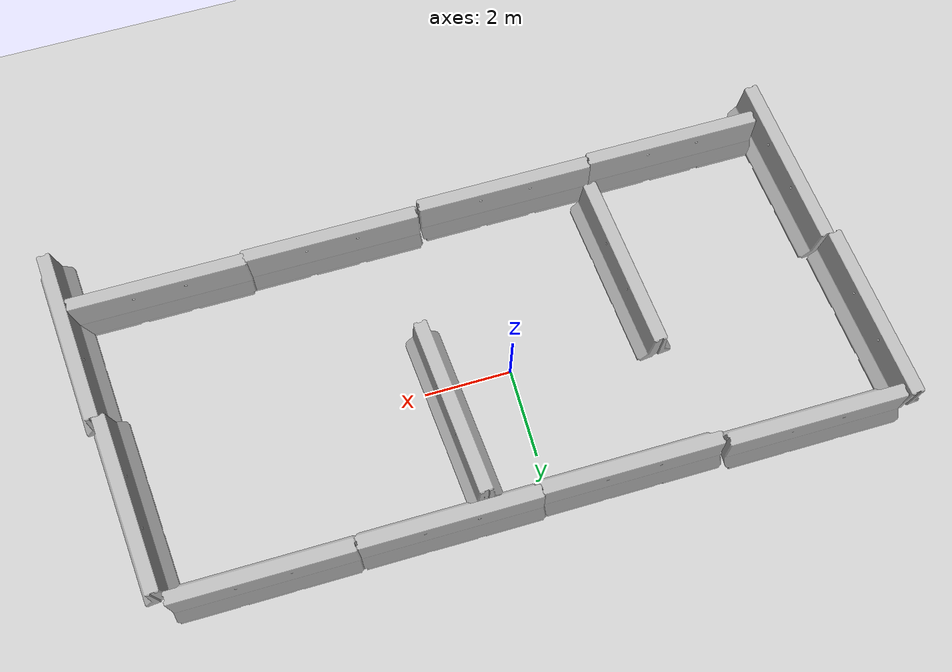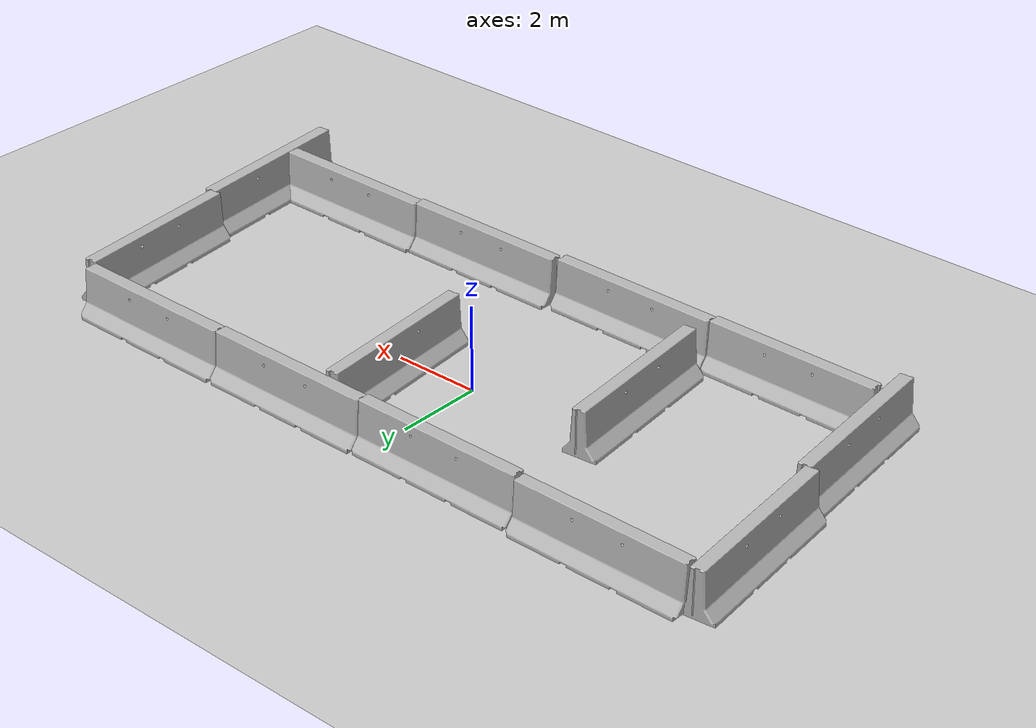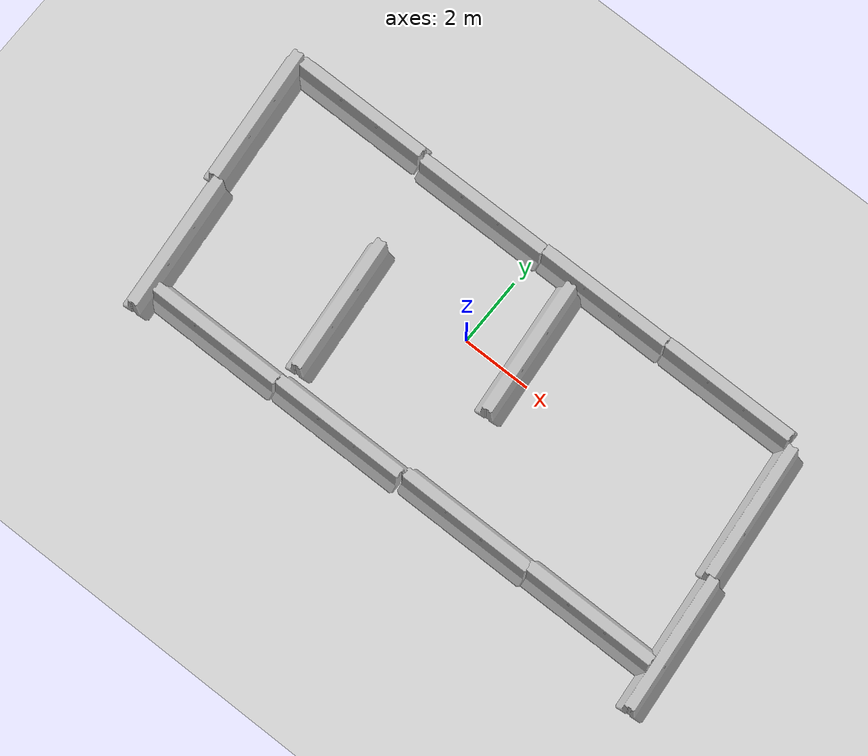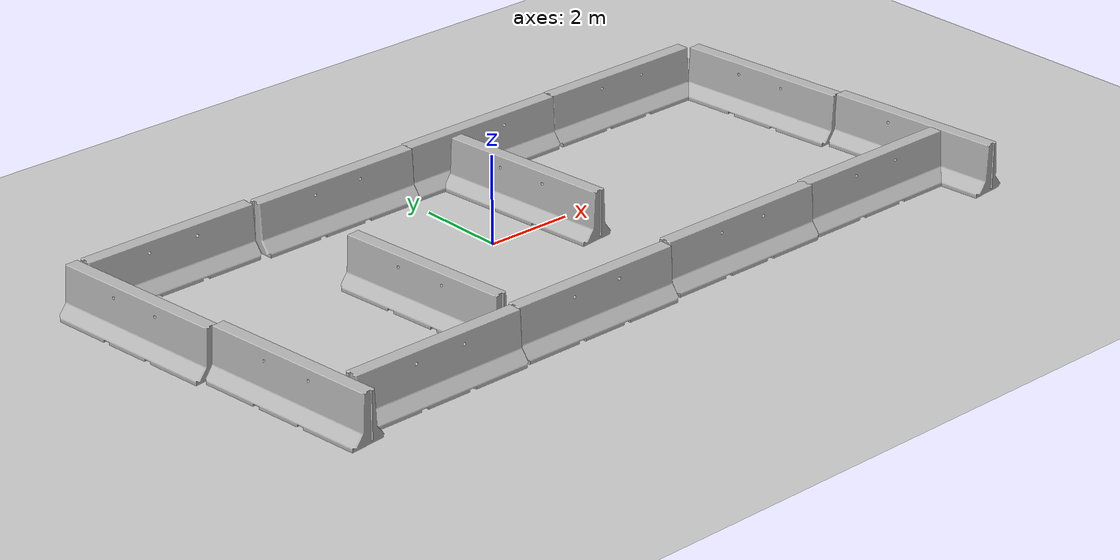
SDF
<sdf version="1.6">
 <world name="default">
  <light name="sun" type="directional">
   <pose>0 0 10 0 -0 0</pose>
   <diffuse>0.8 0.8 0.8 1</diffuse>
   <specular>0.2 0.2 0.2 1</specular>
   <attenuation>
    <range>1000</range>
    <constant>0.9</constant>
    <linear>0.01</linear>
    <quadratic>0.001</quadratic>
   </attenuation>
   <direction>-0.5 0.1 -0.9</direction>
  </light>
  <model name="ground_plane">
   <static>1</static>
   <link name="link">
    <collision name="collision">
     <geometry><plane><normal>0 0 1</normal><size>100 100</size></plane></geometry>
     <surface>
      <contact><collide_bitmask>65535</collide_bitmask></contact>
      <friction><ode><mu>100</mu><mu2>50</mu2></ode></friction>
     </surface>
    </collision>
    <visual name="visual">
     <cast_shadows>0</cast_shadows>
     <geometry><plane><normal>0 0 1</normal><size>100 100</size></plane></geometry>
     <material>
      <script><uri>file://media/materials/scripts/gazebo.material</uri><name>Gazebo/Grey</name></script>
     </material>
    </visual>
   </link>
  </model>
  <gravity>0 0 -9.8</gravity>
  <magnetic_field>6e-06 2.3e-05 -4.2e-05</magnetic_field>
  <atmosphere type="adiabatic"/>
  <physics name="default_physics" default="0" type="ode">
   <max_step_size>0.001</max_step_size>
   <real_time_factor>1</real_time_factor>
   <real_time_update_rate>1000</real_time_update_rate>
  </physics>
  <scene><ambient>0.4 0.4 0.4 1</ambient><background>0.7 0.7 0.7 1</background><shadows>1</shadows></scene>
  <audio><device>default</device></audio>
  <spherical_coordinates>
   <surface_model>EARTH_WGS84</surface_model>
   <latitude_deg>0</latitude_deg>
   <longitude_deg>0</longitude_deg>
   <elevation>0</elevation>
   <heading_deg>0</heading_deg>
  </spherical_coordinates>
  <model name="jersey_barrier">
   <static>1</static>
   <link name="link">
    <visual name="visual">
     <geometry><mesh><uri>model://jersey_barrier/meshes/jersey_barrier.dae</uri></mesh></geometry>
    </visual>
    <collision name="upright">
     <pose>0 0 0.5715 0 -0 0</pose>
     <geometry><box><size>4.06542 0.3063 1.143</size></box></geometry>
    </collision>
    <collision name="base">
     <pose>0 0 0.032258 0 -0 0</pose>
     <geometry><box><size>4.06542 0.8107 0.064516</size></box></geometry>
    </collision>
    <collision name="base2">
     <pose>0 0 0.1 0 -0 0</pose>
     <geometry><box><size>4.06542 0.65 0.1</size></box></geometry>
    </collision>
    <collision name="base3">
     <pose>0 0 0.2 0 -0 0</pose>
     <geometry><box><size>4.06542 0.5 0.1</size></box></geometry>
    </collision>
    <collision name="left-angle">
     <pose>0 -0.224 0.2401 0.9 -0 0</pose>
     <geometry><box><size>4.06542 0.5 0.064516</size></box></geometry>
    </collision>
    <collision name="right-angle">
     <pose>0 0.224 0.2401 -0.9 0 0</pose>
     <geometry><box><size>4.06542 0.5 0.064516</size></box></geometry>
    </collision>
   </link>
   <pose>3.11902 -3.90416 0 0 -0 0</pose>
  </model>
  <model name="jersey_barrier_0">
   <static>1</static>
   <link name="link">
    <visual name="visual">
     <geometry><mesh><uri>model://jersey_barrier/meshes/jersey_barrier.dae</uri></mesh></geometry>
    </visual>
    <collision name="upright">
     <pose>0 0 0.5715 0 -0 0</pose>
     <geometry><box><size>4.06542 0.3063 1.143</size></box></geometry>
    </collision>
    <collision name="base">
     <pose>0 0 0.032258 0 -0 0</pose>
     <geometry><box><size>4.06542 0.8107 0.064516</size></box></geometry>
    </collision>
    <collision name="base2">
     <pose>0 0 0.1 0 -0 0</pose>
     <geometry><box><size>4.06542 0.65 0.1</size></box></geometry>
    </collision>
    <collision name="base3">
     <pose>0 0 0.2 0 -0 0</pose>
     <geometry><box><size>4.06542 0.5 0.1</size></box></geometry>
    </collision>
    <collision name="left-angle">
     <pose>0 -0.224 0.2401 0.9 -0 0</pose>
     <geometry><box><size>4.06542 0.5 0.064516</size></box></geometry>
    </collision>
    <collision name="right-angle">
     <pose>0 0.224 0.2401 -0.9 0 0</pose>
     <geometry><box><size>4.06542 0.5 0.064516</size></box></geometry>
    </collision>
   </link>
   <pose>-0.995885 -4.02852 0 0 -0 0</pose>
  </model>
  <model name="jersey_barrier_1">
   <static>1</static>
   <link name="link">
    <visual name="visual">
     <geometry><mesh><uri>model://jersey_barrier/meshes/jersey_barrier.dae</uri></mesh></geometry>
    </visual>
    <collision name="upright">
     <pose>0 0 0.5715 0 -0 0</pose>
     <geometry><box><size>4.06542 0.3063 1.143</size></box></geometry>
    </collision>
    <collision name="base">
     <pose>0 0 0.032258 0 -0 0</pose>
     <geometry><box><size>4.06542 0.8107 0.064516</size></box></geometry>
    </collision>
    <collision name="base2">
     <pose>0 0 0.1 0 -0 0</pose>
     <geometry><box><size>4.06542 0.65 0.1</size></box></geometry>
    </collision>
    <collision name="base3">
     <pose>0 0 0.2 0 -0 0</pose>
     <geometry><box><size>4.06542 0.5 0.1</size></box></geometry>
    </collision>
    <collision name="left-angle">
     <pose>0 -0.224 0.2401 0.9 -0 0</pose>
     <geometry><box><size>4.06542 0.5 0.064516</size></box></geometry>
    </collision>
    <collision name="right-angle">
     <pose>0 0.224 0.2401 -0.9 0 0</pose>
     <geometry><box><size>4.06542 0.5 0.064516</size></box></geometry>
    </collision>
   </link>
   <pose>-5.05032 -4.09335 0 0 -0 0</pose>
  </model>
  <model name="jersey_barrier_2">
   <static>1</static>
   <link name="link">
    <visual name="visual">
     <geometry><mesh><uri>model://jersey_barrier/meshes/jersey_barrier.dae</uri></mesh></geometry>
    </visual>
    <collision name="upright">
     <pose>0 0 0.5715 0 -0 0</pose>
     <geometry><box><size>4.06542 0.3063 1.143</size></box></geometry>
    </collision>
    <collision name="base">
     <pose>0 0 0.032258 0 -0 0</pose>
     <geometry><box><size>4.06542 0.8107 0.064516</size></box></geometry>
    </collision>
    <collision name="base2">
     <pose>0 0 0.1 0 -0 0</pose>
     <geometry><box><size>4.06542 0.65 0.1</size></box></geometry>
    </collision>
    <collision name="base3">
     <pose>0 0 0.2 0 -0 0</pose>
     <geometry><box><size>4.06542 0.5 0.1</size></box></geometry>
    </collision>
    <collision name="left-angle">
     <pose>0 -0.224 0.2401 0.9 -0 0</pose>
     <geometry><box><size>4.06542 0.5 0.064516</size></box></geometry>
    </collision>
    <collision name="right-angle">
     <pose>0 0.224 0.2401 -0.9 0 0</pose>
     <geometry><box><size>4.06542 0.5 0.064516</size></box></geometry>
    </collision>
   </link>
   <pose>2.22801 2.99706 0 0 -0 0</pose>
  </model>
  <model name="jersey_barrier_3">
   <static>1</static>
   <link name="link">
    <visual name="visual">
     <geometry><mesh><uri>model://jersey_barrier/meshes/jersey_barrier.dae</uri></mesh></geometry>
    </visual>
    <collision name="upright">
     <pose>0 0 0.5715 0 -0 0</pose>
     <geometry><box><size>4.06542 0.3063 1.143</size></box></geometry>
    </collision>
    <collision name="base">
     <pose>0 0 0.032258 0 -0 0</pose>
     <geometry><box><size>4.06542 0.8107 0.064516</size></box></geometry>
    </collision>
    <collision name="base2">
     <pose>0 0 0.1 0 -0 0</pose>
     <geometry><box><size>4.06542 0.65 0.1</size></box></geometry>
    </collision>
    <collision name="base3">
     <pose>0 0 0.2 0 -0 0</pose>
     <geometry><box><size>4.06542 0.5 0.1</size></box></geometry>
    </collision>
    <collision name="left-angle">
     <pose>0 -0.224 0.2401 0.9 -0 0</pose>
     <geometry><box><size>4.06542 0.5 0.064516</size></box></geometry>
    </collision>
    <collision name="right-angle">
     <pose>0 0.224 0.2401 -0.9 0 0</pose>
     <geometry><box><size>4.06542 0.5 0.064516</size></box></geometry>
    </collision>
   </link>
   <pose>-1.79729 2.94808 0 0 -0 0</pose>
  </model>
  <model name="jersey_barrier_4">
   <static>1</static>
   <link name="link">
    <visual name="visual">
     <geometry><mesh><uri>model://jersey_barrier/meshes/jersey_barrier.dae</uri></mesh></geometry>
    </visual>
    <collision name="upright">
     <pose>0 0 0.5715 0 -0 0</pose>
     <geometry><box><size>4.06542 0.3063 1.143</size></box></geometry>
    </collision>
    <collision name="base">
     <pose>0 0 0.032258 0 -0 0</pose>
     <geometry><box><size>4.06542 0.8107 0.064516</size></box></geometry>
    </collision>
    <collision name="base2">
     <pose>0 0 0.1 0 -0 0</pose>
     <geometry><box><size>4.06542 0.65 0.1</size></box></geometry>
    </collision>
    <collision name="base3">
     <pose>0 0 0.2 0 -0 0</pose>
     <geometry><box><size>4.06542 0.5 0.1</size></box></geometry>
    </collision>
    <collision name="left-angle">
     <pose>0 -0.224 0.2401 0.9 -0 0</pose>
     <geometry><box><size>4.06542 0.5 0.064516</size></box></geometry>
    </collision>
    <collision name="right-angle">
     <pose>0 0.224 0.2401 -0.9 0 0</pose>
     <geometry><box><size>4.06542 0.5 0.064516</size></box></geometry>
    </collision>
   </link>
   <pose>-5.93 3.03629 0 0 -0 0</pose>
  </model>
  <model name="jersey_barrier_5">
   <static>1</static>
   <link name="link">
    <visual name="visual">
     <geometry><mesh><uri>model://jersey_barrier/meshes/jersey_barrier.dae</uri></mesh></geometry>
    </visual>
    <collision name="upright">
     <pose>0 0 0.5715 0 -0 0</pose>
     <geometry><box><size>4.06542 0.3063 1.143</size></box></geometry>
    </collision>
    <collision name="base">
     <pose>0 0 0.032258 0 -0 0</pose>
     <geometry><box><size>4.06542 0.8107 0.064516</size></box></geometry>
    </collision>
    <collision name="base2">
     <pose>0 0 0.1 0 -0 0</pose>
     <geometry><box><size>4.06542 0.65 0.1</size></box></geometry>
    </collision>
    <collision name="base3">
     <pose>0 0 0.2 0 -0 0</pose>
     <geometry><box><size>4.06542 0.5 0.1</size></box></geometry>
    </collision>
    <collision name="left-angle">
     <pose>0 -0.224 0.2401 0.9 -0 0</pose>
     <geometry><box><size>4.06542 0.5 0.064516</size></box></geometry>
    </collision>
    <collision name="right-angle">
     <pose>0 0.224 0.2401 -0.9 0 0</pose>
     <geometry><box><size>4.06542 0.5 0.064516</size></box></geometry>
    </collision>
   </link>
   <pose>7.09229 -3.83737 0 0 -0 0</pose>
  </model>
  <model name="jersey_barrier_6">
   <static>1</static>
   <link name="link">
    <visual name="visual">
     <geometry><mesh><uri>model://jersey_barrier/meshes/jersey_barrier.dae</uri></mesh></geometry>
    </visual>
    <collision name="upright">
     <pose>0 0 0.5715 0 -0 0</pose>
     <geometry><box><size>4.06542 0.3063 1.143</size></box></geometry>
    </collision>
    <collision name="base">
     <pose>0 0 0.032258 0 -0 0</pose>
     <geometry><box><size>4.06542 0.8107 0.064516</size></box></geometry>
    </collision>
    <collision name="base2">
     <pose>0 0 0.1 0 -0 0</pose>
     <geometry><box><size>4.06542 0.65 0.1</size></box></geometry>
    </collision>
    <collision name="base3">
     <pose>0 0 0.2 0 -0 0</pose>
     <geometry><box><size>4.06542 0.5 0.1</size></box></geometry>
    </collision>
    <collision name="left-angle">
     <pose>0 -0.224 0.2401 0.9 -0 0</pose>
     <geometry><box><size>4.06542 0.5 0.064516</size></box></geometry>
    </collision>
    <collision name="right-angle">
     <pose>0 0.224 0.2401 -0.9 0 0</pose>
     <geometry><box><size>4.06542 0.5 0.064516</size></box></geometry>
    </collision>
   </link>
   <pose>6.2832 3.01785 0 0 -0 0</pose>
  </model>
  <model name="jersey_barrier_7">
   <static>1</static>
   <link name="link">
    <visual name="visual">
     <geometry><mesh><uri>model://jersey_barrier/meshes/jersey_barrier.dae</uri></mesh></geometry>
    </visual>
    <collision name="upright">
     <pose>0 0 0.5715 0 -0 0</pose>
     <geometry><box><size>4.06542 0.3063 1.143</size></box></geometry>
    </collision>
    <collision name="base">
     <pose>0 0 0.032258 0 -0 0</pose>
     <geometry><box><size>4.06542 0.8107 0.064516</size></box></geometry>
    </collision>
    <collision name="base2">
     <pose>0 0 0.1 0 -0 0</pose>
     <geometry><box><size>4.06542 0.65 0.1</size></box></geometry>
    </collision>
    <collision name="base3">
     <pose>0 0 0.2 0 -0 0</pose>
     <geometry><box><size>4.06542 0.5 0.1</size></box></geometry>
    </collision>
    <collision name="left-angle">
     <pose>0 -0.224 0.2401 0.9 -0 0</pose>
     <geometry><box><size>4.06542 0.5 0.064516</size></box></geometry>
    </collision>
    <collision name="right-angle">
     <pose>0 0.224 0.2401 -0.9 0 0</pose>
     <geometry><box><size>4.06542 0.5 0.064516</size></box></geometry>
    </collision>
   </link>
   <pose>8.69482 0.842673 0 0 0 -1.47419</pose>
  </model>
  <model name="jersey_barrier_7_clone">
   <static>1</static>
   <link name="link">
    <visual name="visual">
     <geometry><mesh><uri>model://jersey_barrier/meshes/jersey_barrier.dae</uri></mesh></geometry>
    </visual>
    <collision name="upright">
     <pose>0 0 0.5715 0 -0 0</pose>
     <geometry><box><size>4.06542 0.3063 1.143</size></box></geometry>
    </collision>
    <collision name="base">
     <pose>0 0 0.032258 0 -0 0</pose>
     <geometry><box><size>4.06542 0.8107 0.064516</size></box></geometry>
    </collision>
    <collision name="base2">
     <pose>0 0 0.1 0 -0 0</pose>
     <geometry><box><size>4.06542 0.65 0.1</size></box></geometry>
    </collision>
    <collision name="base3">
     <pose>0 0 0.2 0 -0 0</pose>
     <geometry><box><size>4.06542 0.5 0.1</size></box></geometry>
    </collision>
    <collision name="left-angle">
     <pose>0 -0.224 0.2401 0.9 -0 0</pose>
     <geometry><box><size>4.06542 0.5 0.064516</size></box></geometry>
    </collision>
    <collision name="right-angle">
     <pose>0 0.224 0.2401 -0.9 0 0</pose>
     <geometry><box><size>4.06542 0.5 0.064516</size></box></geometry>
    </collision>
   </link>
   <pose>9.21431 -3.15038 0 0 0 -1.47771</pose>
  </model>
  <model name="jersey_barrier_7_clone_0">
   <static>1</static>
   <link name="link">
    <visual name="visual">
     <geometry><mesh><uri>model://jersey_barrier/meshes/jersey_barrier.dae</uri></mesh></geometry>
    </visual>
    <collision name="upright">
     <pose>0 0 0.5715 0 -0 0</pose>
     <geometry><box><size>4.06542 0.3063 1.143</size></box></geometry>
    </collision>
    <collision name="base">
     <pose>0 0 0.032258 0 -0 0</pose>
     <geometry><box><size>4.06542 0.8107 0.064516</size></box></geometry>
    </collision>
    <collision name="base2">
     <pose>0 0 0.1 0 -0 0</pose>
     <geometry><box><size>4.06542 0.65 0.1</size></box></geometry>
    </collision>
    <collision name="base3">
     <pose>0 0 0.2 0 -0 0</pose>
     <geometry><box><size>4.06542 0.5 0.1</size></box></geometry>
    </collision>
    <collision name="left-angle">
     <pose>0 -0.224 0.2401 0.9 -0 0</pose>
     <geometry><box><size>4.06542 0.5 0.064516</size></box></geometry>
    </collision>
    <collision name="right-angle">
     <pose>0 0.224 0.2401 -0.9 0 0</pose>
     <geometry><box><size>4.06542 0.5 0.064516</size></box></geometry>
    </collision>
   </link>
   <pose>-7.99577 1.16149 0 0 0 -1.47771</pose>
  </model>
  <model name="jersey_barrier_7_clone_1">
   <static>1</static>
   <link name="link">
    <visual name="visual">
     <geometry><mesh><uri>model://jersey_barrier/meshes/jersey_barrier.dae</uri></mesh></geometry>
    </visual>
    <collision name="upright">
     <pose>0 0 0.5715 0 -0 0</pose>
     <geometry><box><size>4.06542 0.3063 1.143</size></box></geometry>
    </collision>
    <collision name="base">
     <pose>0 0 0.032258 0 -0 0</pose>
     <geometry><box><size>4.06542 0.8107 0.064516</size></box></geometry>
    </collision>
    <collision name="base2">
     <pose>0 0 0.1 0 -0 0</pose>
     <geometry><box><size>4.06542 0.65 0.1</size></box></geometry>
    </collision>
    <collision name="base3">
     <pose>0 0 0.2 0 -0 0</pose>
     <geometry><box><size>4.06542 0.5 0.1</size></box></geometry>
    </collision>
    <collision name="left-angle">
     <pose>0 -0.224 0.2401 0.9 -0 0</pose>
     <geometry><box><size>4.06542 0.5 0.064516</size></box></geometry>
    </collision>
    <collision name="right-angle">
     <pose>0 0.224 0.2401 -0.9 0 0</pose>
     <geometry><box><size>4.06542 0.5 0.064516</size></box></geometry>
    </collision>
   </link>
   <pose>-7.45362 -2.83624 0 0 0 -1.47771</pose>
  </model>
  <model name="jersey_barrier_7_clone_2">
   <static>1</static>
   <link name="link">
    <visual name="visual">
     <geometry><mesh><uri>model://jersey_barrier/meshes/jersey_barrier.dae</uri></mesh></geometry>
    </visual>
    <collision name="upright">
     <pose>0 0 0.5715 0 -0 0</pose>
     <geometry><box><size>4.06542 0.3063 1.143</size></box></geometry>
    </collision>
    <collision name="base">
     <pose>0 0 0.032258 0 -0 0</pose>
     <geometry><box><size>4.06542 0.8107 0.064516</size></box></geometry>
    </collision>
    <collision name="base2">
     <pose>0 0 0.1 0 -0 0</pose>
     <geometry><box><size>4.06542 0.65 0.1</size></box></geometry>
    </collision>
    <collision name="base3">
     <pose>0 0 0.2 0 -0 0</pose>
     <geometry><box><size>4.06542 0.5 0.1</size></box></geometry>
    </collision>
    <collision name="left-angle">
     <pose>0 -0.224 0.2401 0.9 -0 0</pose>
     <geometry><box><size>4.06542 0.5 0.064516</size></box></geometry>
    </collision>
    <collision name="right-angle">
     <pose>0 0.224 0.2401 -0.9 0 0</pose>
     <geometry><box><size>4.06542 0.5 0.064516</size></box></geometry>
    </collision>
   </link>
   <pose>1.53068 0.679898 0 0 0 -1.47771</pose>
  </model>
  <model name="jersey_barrier_7_clone_3">
   <static>1</static>
   <link name="link">
    <visual name="visual">
     <geometry><mesh><uri>model://jersey_barrier/meshes/jersey_barrier.dae</uri></mesh></geometry>
    </visual>
    <collision name="upright">
     <pose>0 0 0.5715 0 -0 0</pose>
     <geometry><box><size>4.06542 0.3063 1.143</size></box></geometry>
    </collision>
    <collision name="base">
     <pose>0 0 0.032258 0 -0 0</pose>
     <geometry><box><size>4.06542 0.8107 0.064516</size></box></geometry>
    </collision>
    <collision name="base2">
     <pose>0 0 0.1 0 -0 0</pose>
     <geometry><box><size>4.06542 0.65 0.1</size></box></geometry>
    </collision>
    <collision name="base3">
     <pose>0 0 0.2 0 -0 0</pose>
     <geometry><box><size>4.06542 0.5 0.1</size></box></geometry>
    </collision>
    <collision name="left-angle">
     <pose>0 -0.224 0.2401 0.9 -0 0</pose>
     <geometry><box><size>4.06542 0.5 0.064516</size></box></geometry>
    </collision>
    <collision name="right-angle">
     <pose>0 0.224 0.2401 -0.9 0 0</pose>
     <geometry><box><size>4.06542 0.5 0.064516</size></box></geometry>
    </collision>
   </link>
   <pose>-3.05988 -1.48884 0 0 0 -1.47771</pose>
  </model>
 </world>
</sdf>
